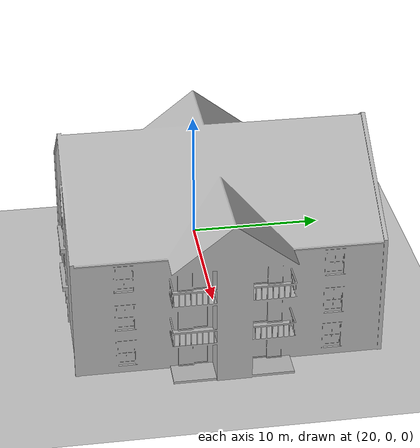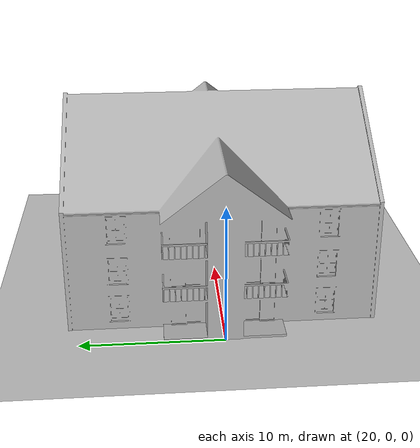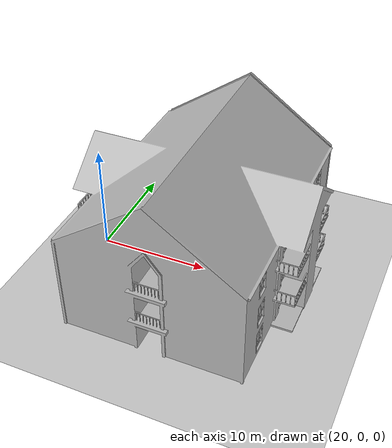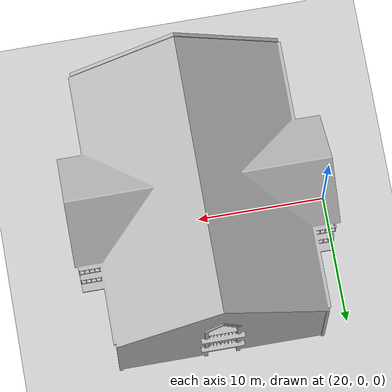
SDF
<?xml version="1.0"?>
<sdf version="1.6">
  <world name="apartment_single">
    <spherical_coordinates>
      <surface_model>EARTH_WGS84</surface_model>
      <latitude_deg>37.4135</latitude_deg>
      <longitude_deg>-121.997</longitude_deg>
      <elevation>1.3</elevation>
      <heading_deg>0</heading_deg>
    </spherical_coordinates>
    <physics name="default_physics" type="ode">
      <max_step_size>0.004</max_step_size>
      <real_time_factor>1.0</real_time_factor>
      <real_time_update_rate>250</real_time_update_rate>
    </physics>
    <scene>
      <ambient>0.45 0.45 0.45 1</ambient>
      <background>0.70 0.82 0.92 1</background>
      <shadows>true</shadows>
    </scene>
    <include><uri>model://sun</uri></include>
    <include><uri>model://ground_plane</uri></include>

    <!-- The only mapping target in this experiment. -->
    <include>
      <name>target_apartment</name>
      <uri>model://apartment</uri>
      <pose>30 0 0 0 0 0</pose>
    </include>

    <!-- Fixed comparison view: 30 m in front of the building, 60-degree HFOV. -->
    <model name="benchmark_reference_camera">
      <static>true</static>
      <pose>0 0 4 0 -0.15 0</pose>
      <link name="camera_link">
        <sensor name="comparison_camera" type="camera">
          <always_on>true</always_on>
          <update_rate>5</update_rate>
          <visualize>false</visualize>
          <camera>
            <horizontal_fov>1.0471975512</horizontal_fov>
            <image><width>960</width><height>540</height><format>R8G8B8</format></image>
            <clip><near>0.1</near><far>100</far></clip>
          </camera>
        </sensor>
      </link>
    </model>
  </world>
</sdf>

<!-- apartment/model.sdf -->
<sdf version="1.6">
  <model name="apartment">
    <static>true</static>
    <link name="link">
      <collision name="collision">
        <geometry>
          <mesh>
            <uri>model://apartment/meshes/apartment.dae</uri>
          </mesh>
        </geometry>
      </collision>
      <visual name="visual">
        <geometry>
          <mesh>
            <uri>model://apartment/meshes/apartment.dae</uri>
          </mesh>
        </geometry>
      </visual>
    </link>
  </model>
</sdf>
